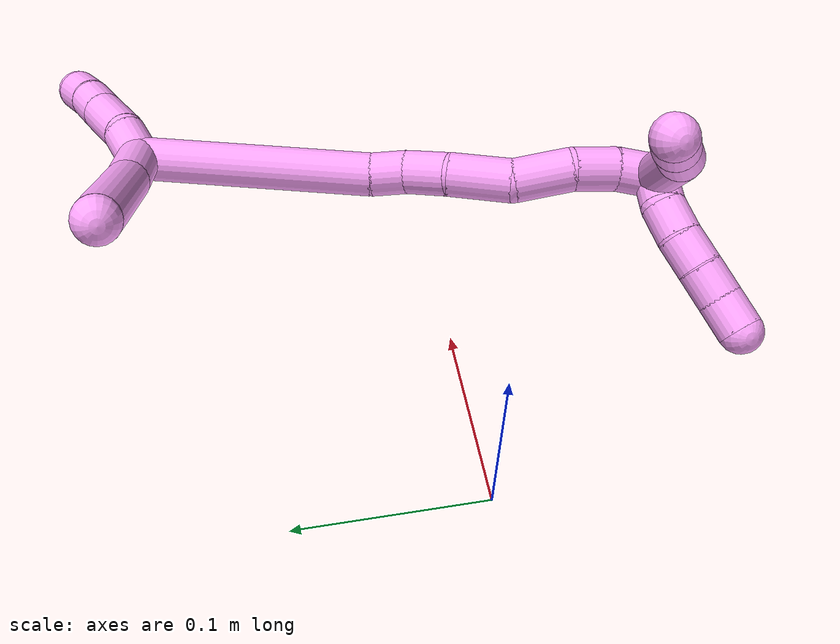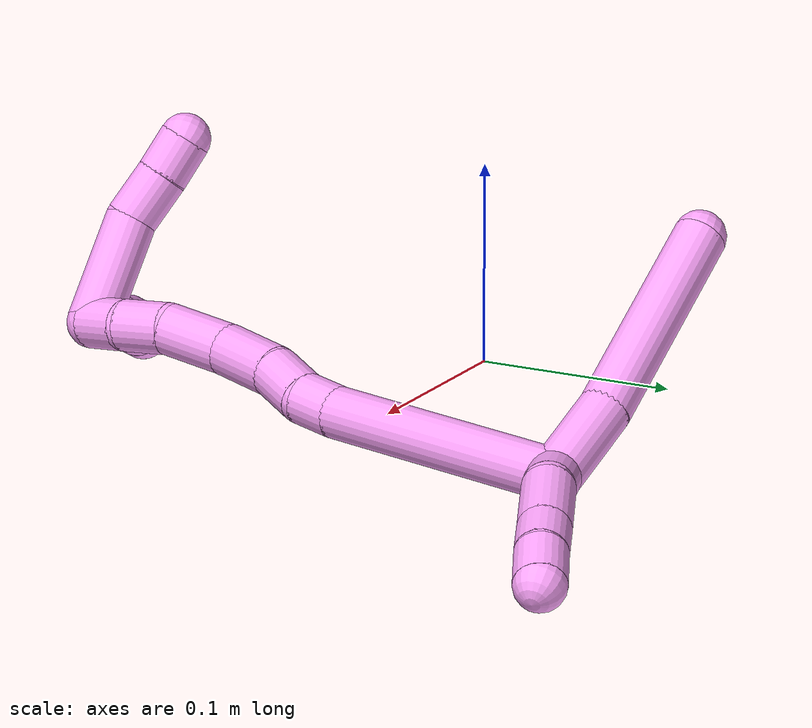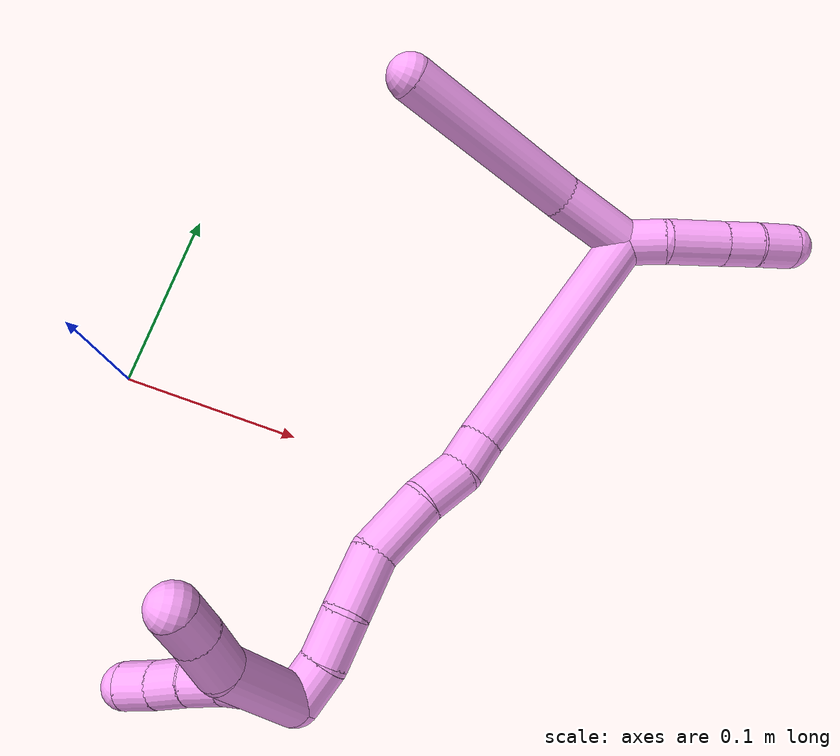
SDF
<sdf version="1.7">
 <world name="default">
  <model name="4">
   <static>0</static>
   <link name="4">
    <collision name="collision-cylinder-e_1_2_8">
     <pose>0.003017 0.004046 -0.022015 -2.95984 0.133988 -1.2693</pose>
     <geometry><cylinder><radius>0.0125</radius><length>0.045171</length></cylinder></geometry>
     <surface>
      <friction><ode><mu>1.16</mu><mu2>1.16</mu2><slip1>0</slip1><slip2>0</slip2></ode></friction>
      <contact><ode><kp>1e+06</kp><kd>1</kd><max_vel>0</max_vel><min_depth>0.001</min_depth></ode></contact>
     </surface>
    </collision>
    <visual name="visual-cylinder-e_1_2_8">
     <pose>0.003017 0.004046 -0.022015 -2.95984 0.133988 -1.2693</pose>
     <geometry><cylinder><radius>0.0125</radius><length>0.045171</length></cylinder></geometry>
     <material><ambient>1 0.65098 0.996078 1</ambient></material>
    </visual>
    <collision name="collision-cylinder-e_2_8_6">
     <pose>0.005249 0.018377 -0.095418 -2.94405 -0.014986 0.150943</pose>
     <geometry><cylinder><radius>0.0125</radius><length>0.104829</length></cylinder></geometry>
     <surface>
      <friction><ode><mu>1.16</mu><mu2>1.16</mu2><slip1>0</slip1><slip2>0</slip2></ode></friction>
      <contact><ode><kp>1e+06</kp><kd>1</kd><max_vel>0</max_vel><min_depth>0.001</min_depth></ode></contact>
     </surface>
    </collision>
    <visual name="visual-cylinder-e_2_8_6">
     <pose>0.005249 0.018377 -0.095418 -2.94405 -0.014986 0.150943</pose>
     <geometry><cylinder><radius>0.0125</radius><length>0.104829</length></cylinder></geometry>
     <material><ambient>1 0.65098 0.996078 1</ambient></material>
    </visual>
    <collision name="collision-cylinder-e_1_2_9">
     <pose>-0.00429 0.005143 0.009186 -0.510374 -0.386931 0.10213</pose>
     <geometry><cylinder><radius>0.0125</radius><length>0.022737</length></cylinder></geometry>
     <surface>
      <friction><ode><mu>1.16</mu><mu2>1.16</mu2><slip1>0</slip1><slip2>0</slip2></ode></friction>
      <contact><ode><kp>1e+06</kp><kd>1</kd><max_vel>0</max_vel><min_depth>0.001</min_depth></ode></contact>
     </surface>
    </collision>
    <visual name="visual-cylinder-e_1_2_9">
     <pose>-0.00429 0.005143 0.009186 -0.510374 -0.386931 0.10213</pose>
     <geometry><cylinder><radius>0.0125</radius><length>0.022737</length></cylinder></geometry>
     <material><ambient>1 0.65098 0.996078 1</ambient></material>
    </visual>
    <collision name="collision-cylinder-e_2_9_10">
     <pose>-0.010047 0.016399 0.034246 -0.367629 -0.086064 0.01601</pose>
     <geometry><cylinder><radius>0.0125</radius><length>0.034148</length></cylinder></geometry>
     <surface>
      <friction><ode><mu>1.16</mu><mu2>1.16</mu2><slip1>0</slip1><slip2>0</slip2></ode></friction>
      <contact><ode><kp>1e+06</kp><kd>1</kd><max_vel>0</max_vel><min_depth>0.001</min_depth></ode></contact>
     </surface>
    </collision>
    <visual name="visual-cylinder-e_2_9_10">
     <pose>-0.010047 0.016399 0.034246 -0.367629 -0.086064 0.01601</pose>
     <geometry><cylinder><radius>0.0125</radius><length>0.034148</length></cylinder></geometry>
     <material><ambient>1 0.65098 0.996078 1</ambient></material>
    </visual>
    <collision name="collision-cylinder-e_3_10_11">
     <pose>-0.012721 0.026369 0.059678 -0.383502 -0.116542 0.02265</pose>
     <geometry><cylinder><radius>0.0125</radius><length>0.020753</length></cylinder></geometry>
     <surface>
      <friction><ode><mu>1.16</mu><mu2>1.16</mu2><slip1>0</slip1><slip2>0</slip2></ode></friction>
      <contact><ode><kp>1e+06</kp><kd>1</kd><max_vel>0</max_vel><min_depth>0.001</min_depth></ode></contact>
     </surface>
    </collision>
    <visual name="visual-cylinder-e_3_10_11">
     <pose>-0.012721 0.026369 0.059678 -0.383502 -0.116542 0.02265</pose>
     <geometry><cylinder><radius>0.0125</radius><length>0.020753</length></cylinder></geometry>
     <material><ambient>1 0.65098 0.996078 1</ambient></material>
    </visual>
    <collision name="collision-cylinder-e_4_11_5">
     <pose>-0.013845 0.03388 0.079802 -0.332924 0.007454 -0.001252</pose>
     <geometry><cylinder><radius>0.0125</radius><length>0.022363</length></cylinder></geometry>
     <surface>
      <friction><ode><mu>1.16</mu><mu2>1.16</mu2><slip1>0</slip1><slip2>0</slip2></ode></friction>
      <contact><ode><kp>1e+06</kp><kd>1</kd><max_vel>0</max_vel><min_depth>0.001</min_depth></ode></contact>
     </surface>
    </collision>
    <visual name="visual-cylinder-e_4_11_5">
     <pose>-0.013845 0.03388 0.079802 -0.332924 0.007454 -0.001252</pose>
     <geometry><cylinder><radius>0.0125</radius><length>0.022363</length></cylinder></geometry>
     <material><ambient>1 0.65098 0.996078 1</ambient></material>
    </visual>
    <collision name="collision-cylinder-e_1_2_12">
     <pose>-0.01892 -0.06126 -0.023202 1.93285 -0.281167 -0.404256</pose>
     <geometry><cylinder><radius>0.0125</radius><length>0.136369</length></cylinder></geometry>
     <surface>
      <friction><ode><mu>1.16</mu><mu2>1.16</mu2><slip1>0</slip1><slip2>0</slip2></ode></friction>
      <contact><ode><kp>1e+06</kp><kd>1</kd><max_vel>0</max_vel><min_depth>0.001</min_depth></ode></contact>
     </surface>
    </collision>
    <visual name="visual-cylinder-e_1_2_12">
     <pose>-0.01892 -0.06126 -0.023202 1.93285 -0.281167 -0.404256</pose>
     <geometry><cylinder><radius>0.0125</radius><length>0.136369</length></cylinder></geometry>
     <material><ambient>1 0.65098 0.996078 1</ambient></material>
    </visual>
    <collision name="collision-cylinder-e_2_12_13">
     <pose>-0.042149 -0.13117 -0.050074 1.97205 -0.430057 -0.637335</pose>
     <geometry><cylinder><radius>0.0125</radius><length>0.020674</length></cylinder></geometry>
     <surface>
      <friction><ode><mu>1.16</mu><mu2>1.16</mu2><slip1>0</slip1><slip2>0</slip2></ode></friction>
      <contact><ode><kp>1e+06</kp><kd>1</kd><max_vel>0</max_vel><min_depth>0.001</min_depth></ode></contact>
     </surface>
    </collision>
    <visual name="visual-cylinder-e_2_12_13">
     <pose>-0.042149 -0.13117 -0.050074 1.97205 -0.430057 -0.637335</pose>
     <geometry><cylinder><radius>0.0125</radius><length>0.020674</length></cylinder></geometry>
     <material><ambient>1 0.65098 0.996078 1</ambient></material>
    </visual>
    <collision name="collision-cylinder-e_3_13_14">
     <pose>-0.05044 -0.149042 -0.061722 2.28403 -0.315582 -0.669887</pose>
     <geometry><cylinder><radius>0.0125</radius><length>0.025656</length></cylinder></geometry>
     <surface>
      <friction><ode><mu>1.16</mu><mu2>1.16</mu2><slip1>0</slip1><slip2>0</slip2></ode></friction>
      <contact><ode><kp>1e+06</kp><kd>1</kd><max_vel>0</max_vel><min_depth>0.001</min_depth></ode></contact>
     </surface>
    </collision>
    <visual name="visual-cylinder-e_3_13_14">
     <pose>-0.05044 -0.149042 -0.061722 2.28403 -0.315582 -0.669887</pose>
     <geometry><cylinder><radius>0.0125</radius><length>0.025656</length></cylinder></geometry>
     <material><ambient>1 0.65098 0.996078 1</ambient></material>
    </visual>
    <collision name="collision-cylinder-e_4_14_15">
     <pose>-0.059109 -0.173612 -0.078053 2.06916 -0.262088 -0.43648</pose>
     <geometry><cylinder><radius>0.0125</radius><length>0.036182</length></cylinder></geometry>
     <surface>
      <friction><ode><mu>1.16</mu><mu2>1.16</mu2><slip1>0</slip1><slip2>0</slip2></ode></friction>
      <contact><ode><kp>1e+06</kp><kd>1</kd><max_vel>0</max_vel><min_depth>0.001</min_depth></ode></contact>
     </surface>
    </collision>
    <visual name="visual-cylinder-e_4_14_15">
     <pose>-0.059109 -0.173612 -0.078053 2.06916 -0.262088 -0.43648</pose>
     <geometry><cylinder><radius>0.0125</radius><length>0.036182</length></cylinder></geometry>
     <material><ambient>1 0.65098 0.996078 1</ambient></material>
    </visual>
    <collision name="collision-cylinder-e_5_15_16">
     <pose>-0.072333 -0.202742 -0.09023 1.84156 -0.5381 -0.695887</pose>
     <geometry><cylinder><radius>0.0125</radius><length>0.033315</length></cylinder></geometry>
     <surface>
      <friction><ode><mu>1.16</mu><mu2>1.16</mu2><slip1>0</slip1><slip2>0</slip2></ode></friction>
      <contact><ode><kp>1e+06</kp><kd>1</kd><max_vel>0</max_vel><min_depth>0.001</min_depth></ode></contact>
     </surface>
    </collision>
    <visual name="visual-cylinder-e_5_15_16">
     <pose>-0.072333 -0.202742 -0.09023 1.84156 -0.5381 -0.695887</pose>
     <geometry><cylinder><radius>0.0125</radius><length>0.033315</length></cylinder></geometry>
     <material><ambient>1 0.65098 0.996078 1</ambient></material>
    </visual>
    <collision name="collision-cylinder-e_6_16_17">
     <pose>-0.084895 -0.228337 -0.095638 1.70389 -0.325688 -0.371202</pose>
     <geometry><cylinder><radius>0.0125</radius><length>0.02516</length></cylinder></geometry>
     <surface>
      <friction><ode><mu>1.16</mu><mu2>1.16</mu2><slip1>0</slip1><slip2>0</slip2></ode></friction>
      <contact><ode><kp>1e+06</kp><kd>1</kd><max_vel>0</max_vel><min_depth>0.001</min_depth></ode></contact>
     </surface>
    </collision>
    <visual name="visual-cylinder-e_6_16_17">
     <pose>-0.084895 -0.228337 -0.095638 1.70389 -0.325688 -0.371202</pose>
     <geometry><cylinder><radius>0.0125</radius><length>0.02516</length></cylinder></geometry>
     <material><ambient>1 0.65098 0.996078 1</ambient></material>
    </visual>
    <collision name="collision-cylinder-e_7_17_1">
     <pose>-0.090718 -0.250877 -0.100368 1.8563 -0.159459 -0.21264</pose>
     <geometry><cylinder><radius>0.0125</radius><length>0.022645</length></cylinder></geometry>
     <surface>
      <friction><ode><mu>1.16</mu><mu2>1.16</mu2><slip1>0</slip1><slip2>0</slip2></ode></friction>
      <contact><ode><kp>1e+06</kp><kd>1</kd><max_vel>0</max_vel><min_depth>0.001</min_depth></ode></contact>
     </surface>
    </collision>
    <visual name="visual-cylinder-e_7_17_1">
     <pose>-0.090718 -0.250877 -0.100368 1.8563 -0.159459 -0.21264</pose>
     <geometry><cylinder><radius>0.0125</radius><length>0.022645</length></cylinder></geometry>
     <material><ambient>1 0.65098 0.996078 1</ambient></material>
    </visual>
    <collision name="collision-cylinder-e_1_1_18">
     <pose>-0.100743 -0.25244 -0.127276 -2.77354 -0.312495 1.40474</pose>
     <geometry><cylinder><radius>0.0125</radius><length>0.053522</length></cylinder></geometry>
     <surface>
      <friction><ode><mu>1.16</mu><mu2>1.16</mu2><slip1>0</slip1><slip2>0</slip2></ode></friction>
      <contact><ode><kp>1e+06</kp><kd>1</kd><max_vel>0</max_vel><min_depth>0.001</min_depth></ode></contact>
     </surface>
    </collision>
    <visual name="visual-cylinder-e_1_1_18">
     <pose>-0.100743 -0.25244 -0.127276 -2.77354 -0.312495 1.40474</pose>
     <geometry><cylinder><radius>0.0125</radius><length>0.053522</length></cylinder></geometry>
     <material><ambient>1 0.65098 0.996078 1</ambient></material>
    </visual>
    <collision name="collision-cylinder-e_2_18_19">
     <pose>-0.111455 -0.235074 -0.160633 -2.43435 -0.194255 0.516132</pose>
     <geometry><cylinder><radius>0.0125</radius><length>0.025737</length></cylinder></geometry>
     <surface>
      <friction><ode><mu>1.16</mu><mu2>1.16</mu2><slip1>0</slip1><slip2>0</slip2></ode></friction>
      <contact><ode><kp>1e+06</kp><kd>1</kd><max_vel>0</max_vel><min_depth>0.001</min_depth></ode></contact>
     </surface>
    </collision>
    <visual name="visual-cylinder-e_2_18_19">
     <pose>-0.111455 -0.235074 -0.160633 -2.43435 -0.194255 0.516132</pose>
     <geometry><cylinder><radius>0.0125</radius><length>0.025737</length></cylinder></geometry>
     <material><ambient>1 0.65098 0.996078 1</ambient></material>
    </visual>
    <collision name="collision-cylinder-e_3_19_4">
     <pose>-0.11641 -0.220606 -0.178117 -2.47024 -0.240644 0.667201</pose>
     <geometry><cylinder><radius>0.0125</radius><length>0.020741</length></cylinder></geometry>
     <surface>
      <friction><ode><mu>1.16</mu><mu2>1.16</mu2><slip1>0</slip1><slip2>0</slip2></ode></friction>
      <contact><ode><kp>1e+06</kp><kd>1</kd><max_vel>0</max_vel><min_depth>0.001</min_depth></ode></contact>
     </surface>
    </collision>
    <visual name="visual-cylinder-e_3_19_4">
     <pose>-0.11641 -0.220606 -0.178117 -2.47024 -0.240644 0.667201</pose>
     <geometry><cylinder><radius>0.0125</radius><length>0.020741</length></cylinder></geometry>
     <material><ambient>1 0.65098 0.996078 1</ambient></material>
    </visual>
    <collision name="collision-cylinder-e_1_1_20">
     <pose>-0.08609 -0.262919 -0.111064 2.96894 0.697897 2.67455</pose>
     <geometry><cylinder><radius>0.0125</radius><length>0.02</length></cylinder></geometry>
     <surface>
      <friction><ode><mu>1.16</mu><mu2>1.16</mu2><slip1>0</slip1><slip2>0</slip2></ode></friction>
      <contact><ode><kp>1e+06</kp><kd>1</kd><max_vel>0</max_vel><min_depth>0.001</min_depth></ode></contact>
     </surface>
    </collision>
    <visual name="visual-cylinder-e_1_1_20">
     <pose>-0.08609 -0.262919 -0.111064 2.96894 0.697897 2.67455</pose>
     <geometry><cylinder><radius>0.0125</radius><length>0.02</length></cylinder></geometry>
     <material><ambient>1 0.65098 0.996078 1</ambient></material>
    </visual>
    <collision name="collision-cylinder-e_2_20_21">
     <pose>-0.073627 -0.268666 -0.12524 2.55236 0.64818 1.67232</pose>
     <geometry><cylinder><radius>0.0125</radius><length>0.02</length></cylinder></geometry>
     <surface>
      <friction><ode><mu>1.16</mu><mu2>1.16</mu2><slip1>0</slip1><slip2>0</slip2></ode></friction>
      <contact><ode><kp>1e+06</kp><kd>1</kd><max_vel>0</max_vel><min_depth>0.001</min_depth></ode></contact>
     </surface>
    </collision>
    <visual name="visual-cylinder-e_2_20_21">
     <pose>-0.073627 -0.268666 -0.12524 2.55236 0.64818 1.67232</pose>
     <geometry><cylinder><radius>0.0125</radius><length>0.02</length></cylinder></geometry>
     <material><ambient>1 0.65098 0.996078 1</ambient></material>
    </visual>
    <collision name="collision-cylinder-e_3_21_22">
     <pose>-0.061982 -0.27884 -0.137831 2.37497 0.595272 1.30059</pose>
     <geometry><cylinder><radius>0.0125</radius><length>0.02</length></cylinder></geometry>
     <surface>
      <friction><ode><mu>1.16</mu><mu2>1.16</mu2><slip1>0</slip1><slip2>0</slip2></ode></friction>
      <contact><ode><kp>1e+06</kp><kd>1</kd><max_vel>0</max_vel><min_depth>0.001</min_depth></ode></contact>
     </surface>
    </collision>
    <visual name="visual-cylinder-e_3_21_22">
     <pose>-0.061982 -0.27884 -0.137831 2.37497 0.595272 1.30059</pose>
     <geometry><cylinder><radius>0.0125</radius><length>0.02</length></cylinder></geometry>
     <material><ambient>1 0.65098 0.996078 1</ambient></material>
    </visual>
    <collision name="collision-cylinder-e_4_22_23">
     <pose>-0.050592 -0.29082 -0.149055 2.27149 0.616638 1.20154</pose>
     <geometry><cylinder><radius>0.0125</radius><length>0.02</length></cylinder></geometry>
     <surface>
      <friction><ode><mu>1.16</mu><mu2>1.16</mu2><slip1>0</slip1><slip2>0</slip2></ode></friction>
      <contact><ode><kp>1e+06</kp><kd>1</kd><max_vel>0</max_vel><min_depth>0.001</min_depth></ode></contact>
     </surface>
    </collision>
    <visual name="visual-cylinder-e_4_22_23">
     <pose>-0.050592 -0.29082 -0.149055 2.27149 0.616638 1.20154</pose>
     <geometry><cylinder><radius>0.0125</radius><length>0.02</length></cylinder></geometry>
     <material><ambient>1 0.65098 0.996078 1</ambient></material>
    </visual>
    <collision name="collision-cylinder-e_5_23_3">
     <pose>-0.039168 -0.30269 -0.160351 2.39062 0.599322 1.32957</pose>
     <geometry><cylinder><radius>0.0125</radius><length>0.02</length></cylinder></geometry>
     <surface>
      <friction><ode><mu>1.16</mu><mu2>1.16</mu2><slip1>0</slip1><slip2>0</slip2></ode></friction>
      <contact><ode><kp>1e+06</kp><kd>1</kd><max_vel>0</max_vel><min_depth>0.001</min_depth></ode></contact>
     </surface>
    </collision>
    <visual name="visual-cylinder-e_5_23_3">
     <pose>-0.039168 -0.30269 -0.160351 2.39062 0.599322 1.32957</pose>
     <geometry><cylinder><radius>0.0125</radius><length>0.02</length></cylinder></geometry>
     <material><ambient>1 0.65098 0.996078 1</ambient></material>
    </visual>
    <collision name="collision-sphere-3">
     <pose>-0.033527 -0.308324 -0.166387 0 -0 0</pose>
     <geometry><sphere><radius>0.0125</radius></sphere></geometry>
     <surface>
      <friction><ode><mu>1.16</mu><mu2>1.16</mu2><slip1>0</slip1><slip2>0</slip2></ode></friction>
      <contact><ode><kp>1e+06</kp><kd>1</kd><max_vel>0</max_vel><min_depth>0.001</min_depth></ode></contact>
     </surface>
    </collision>
    <visual name="visual-sphere-3">
     <pose>-0.033527 -0.308324 -0.166387 0 -0 0</pose>
     <geometry><sphere><radius>0.0125</radius></sphere></geometry>
     <material><ambient>1 0.65098 0.996078 1</ambient></material>
    </visual>
    <collision name="collision-sphere-23">
     <pose>-0.044809 -0.297056 -0.154315 0 -0 0</pose>
     <geometry><sphere><radius>0.0125</radius></sphere></geometry>
     <surface>
      <friction><ode><mu>1.16</mu><mu2>1.16</mu2><slip1>0</slip1><slip2>0</slip2></ode></friction>
      <contact><ode><kp>1e+06</kp><kd>1</kd><max_vel>0</max_vel><min_depth>0.001</min_depth></ode></contact>
     </surface>
    </collision>
    <visual name="visual-sphere-23">
     <pose>-0.044809 -0.297056 -0.154315 0 -0 0</pose>
     <geometry><sphere><radius>0.0125</radius></sphere></geometry>
     <material><ambient>1 0.65098 0.996078 1</ambient></material>
    </visual>
    <collision name="collision-sphere-22">
     <pose>-0.056375 -0.284583 -0.143795 0 -0 0</pose>
     <geometry><sphere><radius>0.0125</radius></sphere></geometry>
     <surface>
      <friction><ode><mu>1.16</mu><mu2>1.16</mu2><slip1>0</slip1><slip2>0</slip2></ode></friction>
      <contact><ode><kp>1e+06</kp><kd>1</kd><max_vel>0</max_vel><min_depth>0.001</min_depth></ode></contact>
     </surface>
    </collision>
    <visual name="visual-sphere-22">
     <pose>-0.056375 -0.284583 -0.143795 0 -0 0</pose>
     <geometry><sphere><radius>0.0125</radius></sphere></geometry>
     <material><ambient>1 0.65098 0.996078 1</ambient></material>
    </visual>
    <collision name="collision-sphere-21">
     <pose>-0.067589 -0.273096 -0.131867 0 -0 0</pose>
     <geometry><sphere><radius>0.0125</radius></sphere></geometry>
     <surface>
      <friction><ode><mu>1.16</mu><mu2>1.16</mu2><slip1>0</slip1><slip2>0</slip2></ode></friction>
      <contact><ode><kp>1e+06</kp><kd>1</kd><max_vel>0</max_vel><min_depth>0.001</min_depth></ode></contact>
     </surface>
    </collision>
    <visual name="visual-sphere-21">
     <pose>-0.067589 -0.273096 -0.131867 0 -0 0</pose>
     <geometry><sphere><radius>0.0125</radius></sphere></geometry>
     <material><ambient>1 0.65098 0.996078 1</ambient></material>
    </visual>
    <collision name="collision-sphere-20">
     <pose>-0.079664 -0.264235 -0.118612 0 -0 0</pose>
     <geometry><sphere><radius>0.0125</radius></sphere></geometry>
     <surface>
      <friction><ode><mu>1.16</mu><mu2>1.16</mu2><slip1>0</slip1><slip2>0</slip2></ode></friction>
      <contact><ode><kp>1e+06</kp><kd>1</kd><max_vel>0</max_vel><min_depth>0.001</min_depth></ode></contact>
     </surface>
    </collision>
    <visual name="visual-sphere-20">
     <pose>-0.079664 -0.264235 -0.118612 0 -0 0</pose>
     <geometry><sphere><radius>0.0125</radius></sphere></geometry>
     <material><ambient>1 0.65098 0.996078 1</ambient></material>
    </visual>
    <collision name="collision-sphere-4">
     <pose>-0.118882 -0.21434 -0.186003 0 -0 0</pose>
     <geometry><sphere><radius>0.0125</radius></sphere></geometry>
     <surface>
      <friction><ode><mu>1.16</mu><mu2>1.16</mu2><slip1>0</slip1><slip2>0</slip2></ode></friction>
      <contact><ode><kp>1e+06</kp><kd>1</kd><max_vel>0</max_vel><min_depth>0.001</min_depth></ode></contact>
     </surface>
    </collision>
    <visual name="visual-sphere-4">
     <pose>-0.118882 -0.21434 -0.186003 0 -0 0</pose>
     <geometry><sphere><radius>0.0125</radius></sphere></geometry>
     <material><ambient>1 0.65098 0.996078 1</ambient></material>
    </visual>
    <collision name="collision-sphere-11">
     <pose>-0.013928 0.030226 0.069235 0 -0 0</pose>
     <geometry><sphere><radius>0.0125</radius></sphere></geometry>
     <surface>
      <friction><ode><mu>1.16</mu><mu2>1.16</mu2><slip1>0</slip1><slip2>0</slip2></ode></friction>
      <contact><ode><kp>1e+06</kp><kd>1</kd><max_vel>0</max_vel><min_depth>0.001</min_depth></ode></contact>
     </surface>
    </collision>
    <visual name="visual-sphere-11">
     <pose>-0.013928 0.030226 0.069235 0 -0 0</pose>
     <geometry><sphere><radius>0.0125</radius></sphere></geometry>
     <material><ambient>1 0.65098 0.996078 1</ambient></material>
    </visual>
    <collision name="collision-sphere-10">
     <pose>-0.011515 0.022513 0.05012 0 -0 0</pose>
     <geometry><sphere><radius>0.0125</radius></sphere></geometry>
     <surface>
      <friction><ode><mu>1.16</mu><mu2>1.16</mu2><slip1>0</slip1><slip2>0</slip2></ode></friction>
      <contact><ode><kp>1e+06</kp><kd>1</kd><max_vel>0</max_vel><min_depth>0.001</min_depth></ode></contact>
     </surface>
    </collision>
    <visual name="visual-sphere-10">
     <pose>-0.011515 0.022513 0.05012 0 -0 0</pose>
     <geometry><sphere><radius>0.0125</radius></sphere></geometry>
     <material><ambient>1 0.65098 0.996078 1</ambient></material>
    </visual>
    <collision name="collision-sphere-6">
     <pose>0.004463 0.028663 -0.146807 0 -0 0</pose>
     <geometry><sphere><radius>0.0125</radius></sphere></geometry>
     <surface>
      <friction><ode><mu>1.16</mu><mu2>1.16</mu2><slip1>0</slip1><slip2>0</slip2></ode></friction>
      <contact><ode><kp>1e+06</kp><kd>1</kd><max_vel>0</max_vel><min_depth>0.001</min_depth></ode></contact>
     </surface>
    </collision>
    <visual name="visual-sphere-6">
     <pose>0.004463 0.028663 -0.146807 0 -0 0</pose>
     <geometry><sphere><radius>0.0125</radius></sphere></geometry>
     <material><ambient>1 0.65098 0.996078 1</ambient></material>
    </visual>
    <collision name="collision-sphere-9">
     <pose>-0.00858 0.010286 0.018372 0 -0 0</pose>
     <geometry><sphere><radius>0.0125</radius></sphere></geometry>
     <surface>
      <friction><ode><mu>1.16</mu><mu2>1.16</mu2><slip1>0</slip1><slip2>0</slip2></ode></friction>
      <contact><ode><kp>1e+06</kp><kd>1</kd><max_vel>0</max_vel><min_depth>0.001</min_depth></ode></contact>
     </surface>
    </collision>
    <visual name="visual-sphere-9">
     <pose>-0.00858 0.010286 0.018372 0 -0 0</pose>
     <geometry><sphere><radius>0.0125</radius></sphere></geometry>
     <material><ambient>1 0.65098 0.996078 1</ambient></material>
    </visual>
    <collision name="collision-sphere-2">
     <geometry><sphere><radius>0.0125</radius></sphere></geometry>
     <surface>
      <friction><ode><mu>1.16</mu><mu2>1.16</mu2><slip1>0</slip1><slip2>0</slip2></ode></friction>
      <contact><ode><kp>1e+06</kp><kd>1</kd><max_vel>0</max_vel><min_depth>0.001</min_depth></ode></contact>
     </surface>
    </collision>
    <visual name="visual-sphere-2">
     <geometry><sphere><radius>0.0125</radius></sphere></geometry>
     <material><ambient>1 0.65098 0.996078 1</ambient></material>
    </visual>
    <collision name="collision-sphere-19">
     <pose>-0.113939 -0.226871 -0.170231 0 -0 0</pose>
     <geometry><sphere><radius>0.0125</radius></sphere></geometry>
     <surface>
      <friction><ode><mu>1.16</mu><mu2>1.16</mu2><slip1>0</slip1><slip2>0</slip2></ode></friction>
      <contact><ode><kp>1e+06</kp><kd>1</kd><max_vel>0</max_vel><min_depth>0.001</min_depth></ode></contact>
     </surface>
    </collision>
    <visual name="visual-sphere-19">
     <pose>-0.113939 -0.226871 -0.170231 0 -0 0</pose>
     <geometry><sphere><radius>0.0125</radius></sphere></geometry>
     <material><ambient>1 0.65098 0.996078 1</ambient></material>
    </visual>
    <collision name="collision-sphere-8">
     <pose>0.006034 0.008092 -0.044029 0 -0 0</pose>
     <geometry><sphere><radius>0.0125</radius></sphere></geometry>
     <surface>
      <friction><ode><mu>1.16</mu><mu2>1.16</mu2><slip1>0</slip1><slip2>0</slip2></ode></friction>
      <contact><ode><kp>1e+06</kp><kd>1</kd><max_vel>0</max_vel><min_depth>0.001</min_depth></ode></contact>
     </surface>
    </collision>
    <visual name="visual-sphere-8">
     <pose>0.006034 0.008092 -0.044029 0 -0 0</pose>
     <geometry><sphere><radius>0.0125</radius></sphere></geometry>
     <material><ambient>1 0.65098 0.996078 1</ambient></material>
    </visual>
    <collision name="collision-sphere-5">
     <pose>-0.013761 0.037534 0.09037 0 -0 0</pose>
     <geometry><sphere><radius>0.0125</radius></sphere></geometry>
     <surface>
      <friction><ode><mu>1.16</mu><mu2>1.16</mu2><slip1>0</slip1><slip2>0</slip2></ode></friction>
      <contact><ode><kp>1e+06</kp><kd>1</kd><max_vel>0</max_vel><min_depth>0.001</min_depth></ode></contact>
     </surface>
    </collision>
    <visual name="visual-sphere-5">
     <pose>-0.013761 0.037534 0.09037 0 -0 0</pose>
     <geometry><sphere><radius>0.0125</radius></sphere></geometry>
     <material><ambient>1 0.65098 0.996078 1</ambient></material>
    </visual>
    <collision name="collision-sphere-12">
     <pose>-0.037839 -0.12252 -0.046404 0 -0 0</pose>
     <geometry><sphere><radius>0.0125</radius></sphere></geometry>
     <surface>
      <friction><ode><mu>1.16</mu><mu2>1.16</mu2><slip1>0</slip1><slip2>0</slip2></ode></friction>
      <contact><ode><kp>1e+06</kp><kd>1</kd><max_vel>0</max_vel><min_depth>0.001</min_depth></ode></contact>
     </surface>
    </collision>
    <visual name="visual-sphere-12">
     <pose>-0.037839 -0.12252 -0.046404 0 -0 0</pose>
     <geometry><sphere><radius>0.0125</radius></sphere></geometry>
     <material><ambient>1 0.65098 0.996078 1</ambient></material>
    </visual>
    <collision name="collision-sphere-13">
     <pose>-0.046459 -0.13982 -0.053744 0 -0 0</pose>
     <geometry><sphere><radius>0.0125</radius></sphere></geometry>
     <surface>
      <friction><ode><mu>1.16</mu><mu2>1.16</mu2><slip1>0</slip1><slip2>0</slip2></ode></friction>
      <contact><ode><kp>1e+06</kp><kd>1</kd><max_vel>0</max_vel><min_depth>0.001</min_depth></ode></contact>
     </surface>
    </collision>
    <visual name="visual-sphere-13">
     <pose>-0.046459 -0.13982 -0.053744 0 -0 0</pose>
     <geometry><sphere><radius>0.0125</radius></sphere></geometry>
     <material><ambient>1 0.65098 0.996078 1</ambient></material>
    </visual>
    <collision name="collision-sphere-14">
     <pose>-0.054422 -0.158264 -0.069701 0 -0 0</pose>
     <geometry><sphere><radius>0.0125</radius></sphere></geometry>
     <surface>
      <friction><ode><mu>1.16</mu><mu2>1.16</mu2><slip1>0</slip1><slip2>0</slip2></ode></friction>
      <contact><ode><kp>1e+06</kp><kd>1</kd><max_vel>0</max_vel><min_depth>0.001</min_depth></ode></contact>
     </surface>
    </collision>
    <visual name="visual-sphere-14">
     <pose>-0.054422 -0.158264 -0.069701 0 -0 0</pose>
     <geometry><sphere><radius>0.0125</radius></sphere></geometry>
     <material><ambient>1 0.65098 0.996078 1</ambient></material>
    </visual>
    <collision name="collision-sphere-15">
     <pose>-0.063796 -0.188959 -0.086405 0 -0 0</pose>
     <geometry><sphere><radius>0.0125</radius></sphere></geometry>
     <surface>
      <friction><ode><mu>1.16</mu><mu2>1.16</mu2><slip1>0</slip1><slip2>0</slip2></ode></friction>
      <contact><ode><kp>1e+06</kp><kd>1</kd><max_vel>0</max_vel><min_depth>0.001</min_depth></ode></contact>
     </surface>
    </collision>
    <visual name="visual-sphere-15">
     <pose>-0.063796 -0.188959 -0.086405 0 -0 0</pose>
     <geometry><sphere><radius>0.0125</radius></sphere></geometry>
     <material><ambient>1 0.65098 0.996078 1</ambient></material>
    </visual>
    <collision name="collision-sphere-16">
     <pose>-0.08087 -0.216524 -0.094056 0 -0 0</pose>
     <geometry><sphere><radius>0.0125</radius></sphere></geometry>
     <surface>
      <friction><ode><mu>1.16</mu><mu2>1.16</mu2><slip1>0</slip1><slip2>0</slip2></ode></friction>
      <contact><ode><kp>1e+06</kp><kd>1</kd><max_vel>0</max_vel><min_depth>0.001</min_depth></ode></contact>
     </surface>
    </collision>
    <visual name="visual-sphere-16">
     <pose>-0.08087 -0.216524 -0.094056 0 -0 0</pose>
     <geometry><sphere><radius>0.0125</radius></sphere></geometry>
     <material><ambient>1 0.65098 0.996078 1</ambient></material>
    </visual>
    <collision name="collision-sphere-17">
     <pose>-0.08892 -0.24015 -0.097219 0 -0 0</pose>
     <geometry><sphere><radius>0.0125</radius></sphere></geometry>
     <surface>
      <friction><ode><mu>1.16</mu><mu2>1.16</mu2><slip1>0</slip1><slip2>0</slip2></ode></friction>
      <contact><ode><kp>1e+06</kp><kd>1</kd><max_vel>0</max_vel><min_depth>0.001</min_depth></ode></contact>
     </surface>
    </collision>
    <visual name="visual-sphere-17">
     <pose>-0.08892 -0.24015 -0.097219 0 -0 0</pose>
     <geometry><sphere><radius>0.0125</radius></sphere></geometry>
     <material><ambient>1 0.65098 0.996078 1</ambient></material>
    </visual>
    <collision name="collision-sphere-1">
     <pose>-0.092516 -0.261603 -0.103516 0 -0 0</pose>
     <geometry><sphere><radius>0.0125</radius></sphere></geometry>
     <surface>
      <friction><ode><mu>1.16</mu><mu2>1.16</mu2><slip1>0</slip1><slip2>0</slip2></ode></friction>
      <contact><ode><kp>1e+06</kp><kd>1</kd><max_vel>0</max_vel><min_depth>0.001</min_depth></ode></contact>
     </surface>
    </collision>
    <visual name="visual-sphere-1">
     <pose>-0.092516 -0.261603 -0.103516 0 -0 0</pose>
     <geometry><sphere><radius>0.0125</radius></sphere></geometry>
     <material><ambient>1 0.65098 0.996078 1</ambient></material>
    </visual>
    <collision name="collision-sphere-18">
     <pose>-0.108971 -0.243278 -0.151036 0 -0 0</pose>
     <geometry><sphere><radius>0.0125</radius></sphere></geometry>
     <surface>
      <friction><ode><mu>1.16</mu><mu2>1.16</mu2><slip1>0</slip1><slip2>0</slip2></ode></friction>
      <contact><ode><kp>1e+06</kp><kd>1</kd><max_vel>0</max_vel><min_depth>0.001</min_depth></ode></contact>
     </surface>
    </collision>
    <visual name="visual-sphere-18">
     <pose>-0.108971 -0.243278 -0.151036 0 -0 0</pose>
     <geometry><sphere><radius>0.0125</radius></sphere></geometry>
     <material><ambient>1 0.65098 0.996078 1</ambient></material>
    </visual>
    <inertial>
     <pose>-0.040955 -0.116635 -0.068265 0 -0 0</pose>
     <mass>0.75</mass>
     <inertia>
      <ixx>0.000255</ixx>
      <ixy>0</ixy>
      <ixz>0</ixz>
      <iyy>-0.000219</iyy>
      <iyz>0</iyz>
      <izz>0.000226</izz>
     </inertia>
    </inertial>
   </link>
   <pose>0.236349 0.158244 0.030989 2.44998 0.85703 2.4393</pose>
  </model>
 </world>
</sdf>
